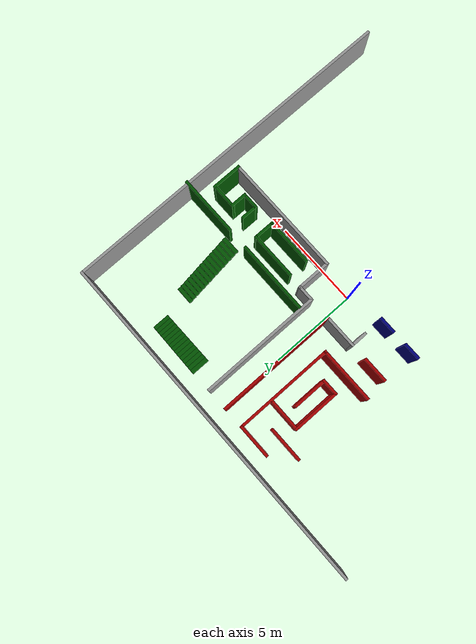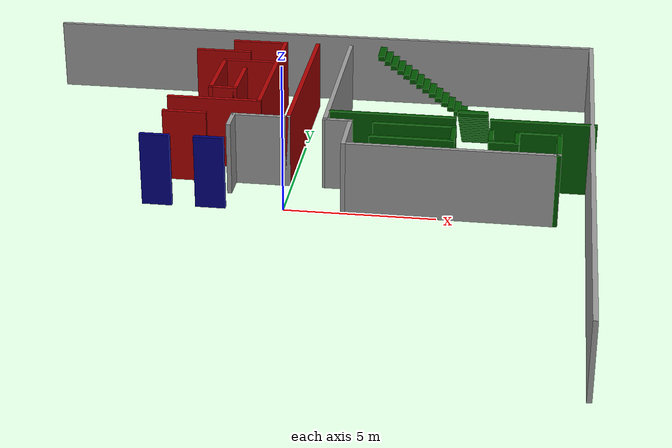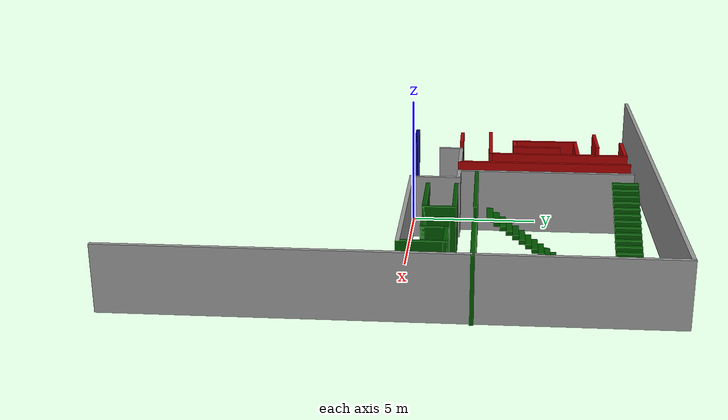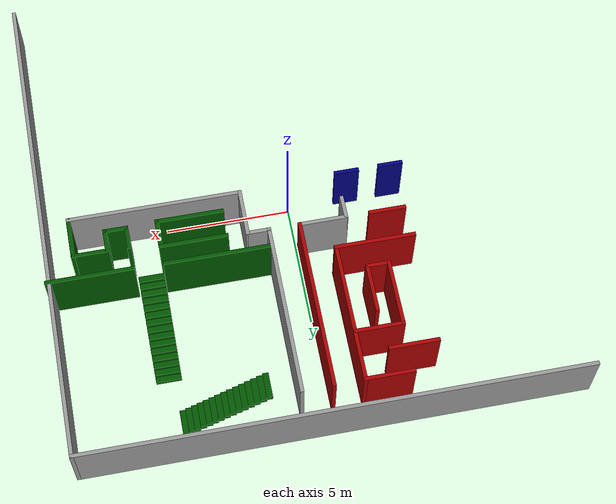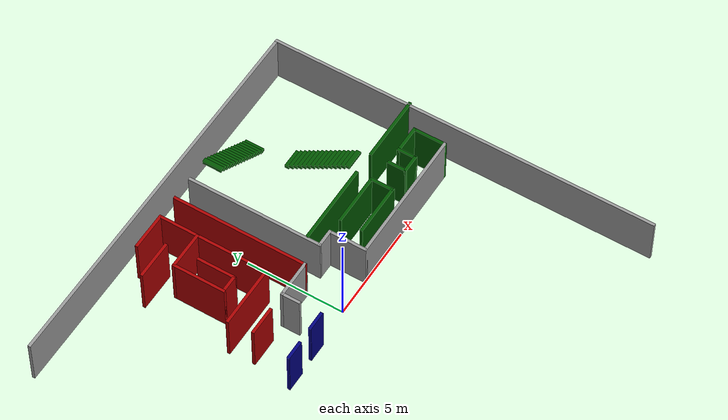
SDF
<sdf version="1.7">
 <model name="labyrinthe-backup">
  <pose>-0.042647 -0.217764 0 0 -0 0</pose>
  <link name="Stairs_0">
   <visual name="Stairs_0_Visual_0">
    <pose>5.96244 6.62392 0.083333 0 -0 0</pose>
    <geometry><box><size>1 0.233333 0.166667</size></box></geometry>
    <material>
     <script><uri>file://media/materials/scripts/gazebo.material</uri><name>Gazebo/Grey</name></script>
     <ambient>0 0.333333 0 1</ambient>
    </material>
    <meta><layer>0</layer></meta>
   </visual>
   <collision name="Stairs_0_Collision_0">
    <geometry><box><size>1 0.233333 0.166667</size></box></geometry>
    <pose>5.96244 6.62392 0.083333 0 -0 0</pose>
   </collision>
   <visual name="Stairs_0_Visual_1">
    <pose>5.96244 6.39059 0.25 0 -0 0</pose>
    <geometry><box><size>1 0.233333 0.166667</size></box></geometry>
    <material>
     <script><uri>file://media/materials/scripts/gazebo.material</uri><name>Gazebo/Grey</name></script>
     <ambient>0 0.333333 0 1</ambient>
    </material>
    <meta><layer>0</layer></meta>
   </visual>
   <collision name="Stairs_0_Collision_1">
    <geometry><box><size>1 0.233333 0.166667</size></box></geometry>
    <pose>5.96244 6.39059 0.25 0 -0 0</pose>
   </collision>
   <visual name="Stairs_0_Visual_2">
    <pose>5.96244 6.15725 0.416667 0 -0 0</pose>
    <geometry><box><size>1 0.233333 0.166667</size></box></geometry>
    <material>
     <script><uri>file://media/materials/scripts/gazebo.material</uri><name>Gazebo/Grey</name></script>
     <ambient>0 0.333333 0 1</ambient>
    </material>
    <meta><layer>0</layer></meta>
   </visual>
   <collision name="Stairs_0_Collision_2">
    <geometry><box><size>1 0.233333 0.166667</size></box></geometry>
    <pose>5.96244 6.15725 0.416667 0 -0 0</pose>
   </collision>
   <visual name="Stairs_0_Visual_3">
    <pose>5.96244 5.92392 0.583333 0 -0 0</pose>
    <geometry><box><size>1 0.233333 0.166667</size></box></geometry>
    <material>
     <script><uri>file://media/materials/scripts/gazebo.material</uri><name>Gazebo/Grey</name></script>
     <ambient>0 0.333333 0 1</ambient>
    </material>
    <meta><layer>0</layer></meta>
   </visual>
   <collision name="Stairs_0_Collision_3">
    <geometry><box><size>1 0.233333 0.166667</size></box></geometry>
    <pose>5.96244 5.92392 0.583333 0 -0 0</pose>
   </collision>
   <visual name="Stairs_0_Visual_4">
    <pose>5.96244 5.69059 0.75 0 -0 0</pose>
    <geometry><box><size>1 0.233333 0.166667</size></box></geometry>
    <material>
     <script><uri>file://media/materials/scripts/gazebo.material</uri><name>Gazebo/Grey</name></script>
     <ambient>0 0.333333 0 1</ambient>
    </material>
    <meta><layer>0</layer></meta>
   </visual>
   <collision name="Stairs_0_Collision_4">
    <geometry><box><size>1 0.233333 0.166667</size></box></geometry>
    <pose>5.96244 5.69059 0.75 0 -0 0</pose>
   </collision>
   <visual name="Stairs_0_Visual_5">
    <pose>5.96244 5.45725 0.916667 0 -0 0</pose>
    <geometry><box><size>1 0.233333 0.166667</size></box></geometry>
    <material>
     <script><uri>file://media/materials/scripts/gazebo.material</uri><name>Gazebo/Grey</name></script>
     <ambient>0 0.333333 0 1</ambient>
    </material>
    <meta><layer>0</layer></meta>
   </visual>
   <collision name="Stairs_0_Collision_5">
    <geometry><box><size>1 0.233333 0.166667</size></box></geometry>
    <pose>5.96244 5.45725 0.916667 0 -0 0</pose>
   </collision>
   <visual name="Stairs_0_Visual_6">
    <pose>5.96244 5.22392 1.08333 0 -0 0</pose>
    <geometry><box><size>1 0.233333 0.166667</size></box></geometry>
    <material>
     <script><uri>file://media/materials/scripts/gazebo.material</uri><name>Gazebo/Grey</name></script>
     <ambient>0 0.333333 0 1</ambient>
    </material>
    <meta><layer>0</layer></meta>
   </visual>
   <collision name="Stairs_0_Collision_6">
    <geometry><box><size>1 0.233333 0.166667</size></box></geometry>
    <pose>5.96244 5.22392 1.08333 0 -0 0</pose>
   </collision>
   <visual name="Stairs_0_Visual_7">
    <pose>5.96244 4.99059 1.25 0 -0 0</pose>
    <geometry><box><size>1 0.233333 0.166667</size></box></geometry>
    <material>
     <script><uri>file://media/materials/scripts/gazebo.material</uri><name>Gazebo/Grey</name></script>
     <ambient>0 0.333333 0 1</ambient>
    </material>
    <meta><layer>0</layer></meta>
   </visual>
   <collision name="Stairs_0_Collision_7">
    <geometry><box><size>1 0.233333 0.166667</size></box></geometry>
    <pose>5.96244 4.99059 1.25 0 -0 0</pose>
   </collision>
   <visual name="Stairs_0_Visual_8">
    <pose>5.96244 4.75725 1.41667 0 -0 0</pose>
    <geometry><box><size>1 0.233333 0.166667</size></box></geometry>
    <material>
     <script><uri>file://media/materials/scripts/gazebo.material</uri><name>Gazebo/Grey</name></script>
     <ambient>0 0.333333 0 1</ambient>
    </material>
    <meta><layer>0</layer></meta>
   </visual>
   <collision name="Stairs_0_Collision_8">
    <geometry><box><size>1 0.233333 0.166667</size></box></geometry>
    <pose>5.96244 4.75725 1.41667 0 -0 0</pose>
   </collision>
   <visual name="Stairs_0_Visual_9">
    <pose>5.96244 4.52392 1.58333 0 -0 0</pose>
    <geometry><box><size>1 0.233333 0.166667</size></box></geometry>
    <material>
     <script><uri>file://media/materials/scripts/gazebo.material</uri><name>Gazebo/Grey</name></script>
     <ambient>0 0.333333 0 1</ambient>
    </material>
    <meta><layer>0</layer></meta>
   </visual>
   <collision name="Stairs_0_Collision_9">
    <geometry><box><size>1 0.233333 0.166667</size></box></geometry>
    <pose>5.96244 4.52392 1.58333 0 -0 0</pose>
   </collision>
   <visual name="Stairs_0_Visual_10">
    <pose>5.96244 4.29059 1.75 0 -0 0</pose>
    <geometry><box><size>1 0.233333 0.166667</size></box></geometry>
    <material>
     <script><uri>file://media/materials/scripts/gazebo.material</uri><name>Gazebo/Grey</name></script>
     <ambient>0 0.333333 0 1</ambient>
    </material>
    <meta><layer>0</layer></meta>
   </visual>
   <collision name="Stairs_0_Collision_10">
    <geometry><box><size>1 0.233333 0.166667</size></box></geometry>
    <pose>5.96244 4.29059 1.75 0 -0 0</pose>
   </collision>
   <visual name="Stairs_0_Visual_11">
    <pose>5.96244 4.05725 1.91667 0 -0 0</pose>
    <geometry><box><size>1 0.233333 0.166667</size></box></geometry>
    <material>
     <script><uri>file://media/materials/scripts/gazebo.material</uri><name>Gazebo/Grey</name></script>
     <ambient>0 0.333333 0 1</ambient>
    </material>
    <meta><layer>0</layer></meta>
   </visual>
   <collision name="Stairs_0_Collision_11">
    <geometry><box><size>1 0.233333 0.166667</size></box></geometry>
    <pose>5.96244 4.05725 1.91667 0 -0 0</pose>
   </collision>
   <visual name="Stairs_0_Visual_12">
    <pose>5.96244 3.82392 2.08333 0 -0 0</pose>
    <geometry><box><size>1 0.233333 0.166667</size></box></geometry>
    <material>
     <script><uri>file://media/materials/scripts/gazebo.material</uri><name>Gazebo/Grey</name></script>
     <ambient>0 0.333333 0 1</ambient>
    </material>
    <meta><layer>0</layer></meta>
   </visual>
   <collision name="Stairs_0_Collision_12">
    <geometry><box><size>1 0.233333 0.166667</size></box></geometry>
    <pose>5.96244 3.82392 2.08333 0 -0 0</pose>
   </collision>
   <visual name="Stairs_0_Visual_13">
    <pose>5.96244 3.59059 2.25 0 -0 0</pose>
    <geometry><box><size>1 0.233333 0.166667</size></box></geometry>
    <material>
     <script><uri>file://media/materials/scripts/gazebo.material</uri><name>Gazebo/Grey</name></script>
     <ambient>0 0.333333 0 1</ambient>
    </material>
    <meta><layer>0</layer></meta>
   </visual>
   <collision name="Stairs_0_Collision_13">
    <geometry><box><size>1 0.233333 0.166667</size></box></geometry>
    <pose>5.96244 3.59059 2.25 0 -0 0</pose>
   </collision>
   <visual name="Stairs_0_Visual_14">
    <pose>5.96244 3.35725 2.41667 0 -0 0</pose>
    <geometry><box><size>1 0.233333 0.166667</size></box></geometry>
    <material>
     <script><uri>file://media/materials/scripts/gazebo.material</uri><name>Gazebo/Grey</name></script>
     <ambient>0 0.333333 0 1</ambient>
    </material>
    <meta><layer>0</layer></meta>
   </visual>
   <collision name="Stairs_0_Collision_14">
    <geometry><box><size>1 0.233333 0.166667</size></box></geometry>
    <pose>5.96244 3.35725 2.41667 0 -0 0</pose>
   </collision>
  </link>
  <link name="Stairs_1">
   <visual name="Stairs_1_Visual_0">
    <pose>5.63847 8.54811 0.083333 0 -0 -1.5708</pose>
    <geometry><box><size>1 0.233333 0.166667</size></box></geometry>
    <material>
     <script><uri>file://media/materials/scripts/gazebo.material</uri><name>Gazebo/Grey</name></script>
     <ambient>0 0.333333 0 1</ambient>
    </material>
    <meta><layer>0</layer></meta>
   </visual>
   <collision name="Stairs_1_Collision_0">
    <geometry><box><size>1 0.233333 0.166667</size></box></geometry>
    <pose>5.63847 8.54811 0.083333 0 -0 -1.5708</pose>
   </collision>
   <visual name="Stairs_1_Visual_1">
    <pose>5.40514 8.54811 0.25 0 -0 -1.5708</pose>
    <geometry><box><size>1 0.233333 0.166667</size></box></geometry>
    <material>
     <script><uri>file://media/materials/scripts/gazebo.material</uri><name>Gazebo/Grey</name></script>
     <ambient>0 0.333333 0 1</ambient>
    </material>
    <meta><layer>0</layer></meta>
   </visual>
   <collision name="Stairs_1_Collision_1">
    <geometry><box><size>1 0.233333 0.166667</size></box></geometry>
    <pose>5.40514 8.54811 0.25 0 -0 -1.5708</pose>
   </collision>
   <visual name="Stairs_1_Visual_2">
    <pose>5.1718 8.54811 0.416667 0 -0 -1.5708</pose>
    <geometry><box><size>1 0.233333 0.166667</size></box></geometry>
    <material>
     <script><uri>file://media/materials/scripts/gazebo.material</uri><name>Gazebo/Grey</name></script>
     <ambient>0 0.333333 0 1</ambient>
    </material>
    <meta><layer>0</layer></meta>
   </visual>
   <collision name="Stairs_1_Collision_2">
    <geometry><box><size>1 0.233333 0.166667</size></box></geometry>
    <pose>5.1718 8.54811 0.416667 0 -0 -1.5708</pose>
   </collision>
   <visual name="Stairs_1_Visual_3">
    <pose>4.93847 8.54811 0.583333 0 -0 -1.5708</pose>
    <geometry><box><size>1 0.233333 0.166667</size></box></geometry>
    <material>
     <script><uri>file://media/materials/scripts/gazebo.material</uri><name>Gazebo/Grey</name></script>
     <ambient>0 0.333333 0 1</ambient>
    </material>
    <meta><layer>0</layer></meta>
   </visual>
   <collision name="Stairs_1_Collision_3">
    <geometry><box><size>1 0.233333 0.166667</size></box></geometry>
    <pose>4.93847 8.54811 0.583333 0 -0 -1.5708</pose>
   </collision>
   <visual name="Stairs_1_Visual_4">
    <pose>4.70514 8.54811 0.75 0 -0 -1.5708</pose>
    <geometry><box><size>1 0.233333 0.166667</size></box></geometry>
    <material>
     <script><uri>file://media/materials/scripts/gazebo.material</uri><name>Gazebo/Grey</name></script>
     <ambient>0 0.333333 0 1</ambient>
    </material>
    <meta><layer>0</layer></meta>
   </visual>
   <collision name="Stairs_1_Collision_4">
    <geometry><box><size>1 0.233333 0.166667</size></box></geometry>
    <pose>4.70514 8.54811 0.75 0 -0 -1.5708</pose>
   </collision>
   <visual name="Stairs_1_Visual_5">
    <pose>4.4718 8.54811 0.916667 0 -0 -1.5708</pose>
    <geometry><box><size>1 0.233333 0.166667</size></box></geometry>
    <material>
     <script><uri>file://media/materials/scripts/gazebo.material</uri><name>Gazebo/Grey</name></script>
     <ambient>0 0.333333 0 1</ambient>
    </material>
    <meta><layer>0</layer></meta>
   </visual>
   <collision name="Stairs_1_Collision_5">
    <geometry><box><size>1 0.233333 0.166667</size></box></geometry>
    <pose>4.4718 8.54811 0.916667 0 -0 -1.5708</pose>
   </collision>
   <visual name="Stairs_1_Visual_6">
    <pose>4.23847 8.54811 1.08333 0 -0 -1.5708</pose>
    <geometry><box><size>1 0.233333 0.166667</size></box></geometry>
    <material>
     <script><uri>file://media/materials/scripts/gazebo.material</uri><name>Gazebo/Grey</name></script>
     <ambient>0 0.333333 0 1</ambient>
    </material>
    <meta><layer>0</layer></meta>
   </visual>
   <collision name="Stairs_1_Collision_6">
    <geometry><box><size>1 0.233333 0.166667</size></box></geometry>
    <pose>4.23847 8.54811 1.08333 0 -0 -1.5708</pose>
   </collision>
   <visual name="Stairs_1_Visual_7">
    <pose>4.00514 8.54811 1.25 0 -0 -1.5708</pose>
    <geometry><box><size>1 0.233333 0.166667</size></box></geometry>
    <material>
     <script><uri>file://media/materials/scripts/gazebo.material</uri><name>Gazebo/Grey</name></script>
     <ambient>0 0.333333 0 1</ambient>
    </material>
    <meta><layer>0</layer></meta>
   </visual>
   <collision name="Stairs_1_Collision_7">
    <geometry><box><size>1 0.233333 0.166667</size></box></geometry>
    <pose>4.00514 8.54811 1.25 0 -0 -1.5708</pose>
   </collision>
   <visual name="Stairs_1_Visual_8">
    <pose>3.77181 8.54811 1.41667 0 -0 -1.5708</pose>
    <geometry><box><size>1 0.233333 0.166667</size></box></geometry>
    <material>
     <script><uri>file://media/materials/scripts/gazebo.material</uri><name>Gazebo/Grey</name></script>
     <ambient>0 0.333333 0 1</ambient>
    </material>
    <meta><layer>0</layer></meta>
   </visual>
   <collision name="Stairs_1_Collision_8">
    <geometry><box><size>1 0.233333 0.166667</size></box></geometry>
    <pose>3.77181 8.54811 1.41667 0 -0 -1.5708</pose>
   </collision>
   <visual name="Stairs_1_Visual_9">
    <pose>3.53847 8.54811 1.58333 0 -0 -1.5708</pose>
    <geometry><box><size>1 0.233333 0.166667</size></box></geometry>
    <material>
     <script><uri>file://media/materials/scripts/gazebo.material</uri><name>Gazebo/Grey</name></script>
     <ambient>0 0.333333 0 1</ambient>
    </material>
    <meta><layer>0</layer></meta>
   </visual>
   <collision name="Stairs_1_Collision_9">
    <geometry><box><size>1 0.233333 0.166667</size></box></geometry>
    <pose>3.53847 8.54811 1.58333 0 -0 -1.5708</pose>
   </collision>
   <visual name="Stairs_1_Visual_10">
    <pose>3.30514 8.54811 1.75 0 -0 -1.5708</pose>
    <geometry><box><size>1 0.233333 0.166667</size></box></geometry>
    <material>
     <script><uri>file://media/materials/scripts/gazebo.material</uri><name>Gazebo/Grey</name></script>
     <ambient>0 0.333333 0 1</ambient>
    </material>
    <meta><layer>0</layer></meta>
   </visual>
   <collision name="Stairs_1_Collision_10">
    <geometry><box><size>1 0.233333 0.166667</size></box></geometry>
    <pose>3.30514 8.54811 1.75 0 -0 -1.5708</pose>
   </collision>
   <visual name="Stairs_1_Visual_11">
    <pose>3.0718 8.54811 1.91667 0 -0 -1.5708</pose>
    <geometry><box><size>1 0.233333 0.166667</size></box></geometry>
    <material>
     <script><uri>file://media/materials/scripts/gazebo.material</uri><name>Gazebo/Grey</name></script>
     <ambient>0 0.333333 0 1</ambient>
    </material>
    <meta><layer>0</layer></meta>
   </visual>
   <collision name="Stairs_1_Collision_11">
    <geometry><box><size>1 0.233333 0.166667</size></box></geometry>
    <pose>3.0718 8.54811 1.91667 0 -0 -1.5708</pose>
   </collision>
   <visual name="Stairs_1_Visual_12">
    <pose>2.83847 8.54811 2.08333 0 -0 -1.5708</pose>
    <geometry><box><size>1 0.233333 0.166667</size></box></geometry>
    <material>
     <script><uri>file://media/materials/scripts/gazebo.material</uri><name>Gazebo/Grey</name></script>
     <ambient>0 0.333333 0 1</ambient>
    </material>
    <meta><layer>0</layer></meta>
   </visual>
   <collision name="Stairs_1_Collision_12">
    <geometry><box><size>1 0.233333 0.166667</size></box></geometry>
    <pose>2.83847 8.54811 2.08333 0 -0 -1.5708</pose>
   </collision>
   <visual name="Stairs_1_Visual_13">
    <pose>2.60514 8.54811 2.25 0 -0 -1.5708</pose>
    <geometry><box><size>1 0.233333 0.166667</size></box></geometry>
    <material>
     <script><uri>file://media/materials/scripts/gazebo.material</uri><name>Gazebo/Grey</name></script>
     <ambient>0 0.333333 0 1</ambient>
    </material>
    <meta><layer>0</layer></meta>
   </visual>
   <collision name="Stairs_1_Collision_13">
    <geometry><box><size>1 0.233333 0.166667</size></box></geometry>
    <pose>2.60514 8.54811 2.25 0 -0 -1.5708</pose>
   </collision>
   <visual name="Stairs_1_Visual_14">
    <pose>2.3718 8.54811 2.41667 0 -0 -1.5708</pose>
    <geometry><box><size>1 0.233333 0.166667</size></box></geometry>
    <material>
     <script><uri>file://media/materials/scripts/gazebo.material</uri><name>Gazebo/Grey</name></script>
     <ambient>0 0.333333 0 1</ambient>
    </material>
    <meta><layer>0</layer></meta>
   </visual>
   <collision name="Stairs_1_Collision_14">
    <geometry><box><size>1 0.233333 0.166667</size></box></geometry>
    <pose>2.3718 8.54811 2.41667 0 -0 -1.5708</pose>
   </collision>
  </link>
  <link name="Wall_123">
   <collision name="Wall_123_Collision">
    <geometry><box><size>1 0.15 2.5</size></box></geometry>
    <pose>0 0 1.25 0 -0 0</pose>
   </collision>
   <visual name="Wall_123_Visual">
    <pose>0 0 1.25 0 -0 0</pose>
    <geometry><box><size>1 0.15 2.5</size></box></geometry>
    <material>
     <script><uri>file://media/materials/scripts/gazebo.material</uri><name>Gazebo/Grey</name></script>
     <ambient>0 0 0.498039 1</ambient>
    </material>
    <meta><layer>0</layer></meta>
   </visual>
   <pose>-2.35877 0.113732 0 0 -0 3.14159</pose>
  </link>
  <link name="Wall_126">
   <collision name="Wall_126_Collision">
    <geometry><box><size>1 0.15 2.5</size></box></geometry>
    <pose>0 0 1.25 0 -0 0</pose>
   </collision>
   <visual name="Wall_126_Visual">
    <pose>0 0 1.25 0 -0 0</pose>
    <geometry><box><size>1 0.15 2.5</size></box></geometry>
    <material>
     <script><uri>file://media/materials/scripts/gazebo.material</uri><name>Gazebo/Grey</name></script>
     <ambient>0 0 0.498039 1</ambient>
    </material>
    <meta><layer>0</layer></meta>
   </visual>
   <pose>-4.14326 0.097337 0 0 -0 3.14159</pose>
  </link>
  <link name="Wall_20">
   <collision name="Wall_20_Collision">
    <geometry><box><size>20 0.15 2.5</size></box></geometry>
    <pose>0 0 1.25 0 -0 0</pose>
   </collision>
   <visual name="Wall_20_Visual">
    <pose>0 0 1.25 0 -0 0</pose>
    <geometry><box><size>20 0.15 2.5</size></box></geometry>
    <material>
     <script><uri>file://media/materials/scripts/gazebo.material</uri><name>Gazebo/Grey</name></script>
     <ambient>0 0 0 1</ambient>
    </material>
    <meta><layer>0</layer></meta>
   </visual>
   <pose>-0.030043 9.94053 0 0 -0 0</pose>
  </link>
  <link name="Wall_21">
   <collision name="Wall_21_Collision">
    <geometry><box><size>20 0.15 2.5</size></box></geometry>
    <pose>0 0 1.25 0 -0 0</pose>
   </collision>
   <visual name="Wall_21_Visual">
    <pose>0 0 1.25 0 -0 0</pose>
    <geometry><box><size>20 0.15 2.5</size></box></geometry>
    <material>
     <script><uri>file://media/materials/scripts/gazebo.material</uri><name>Gazebo/Grey</name></script>
     <ambient>0 0 0 1</ambient>
    </material>
    <meta><layer>0</layer></meta>
   </visual>
   <pose>9.89496 0.015532 0 0 -0 -1.5708</pose>
  </link>
  <link name="Wall_260">
   <collision name="Wall_260_Collision">
    <geometry><box><size>7 0.15 2.5</size></box></geometry>
    <pose>0 0 1.25 0 -0 0</pose>
   </collision>
   <visual name="Wall_260_Visual">
    <pose>0 0 1.25 0 -0 0</pose>
    <geometry><box><size>7 0.15 2.5</size></box></geometry>
    <material>
     <script><uri>file://media/materials/scripts/gazebo.material</uri><name>Gazebo/Grey</name></script>
     <ambient>0 0 0 1</ambient>
    </material>
    <meta><layer>0</layer></meta>
   </visual>
   <pose>5.42013 0.26331 0 0 -0 0</pose>
  </link>
  <link name="Wall_261">
   <collision name="Wall_261_Collision">
    <geometry><box><size>1.75 0.15 2.5</size></box></geometry>
    <pose>0 0 1.25 0 -0 0</pose>
   </collision>
   <visual name="Wall_261_Visual">
    <pose>0 0 1.25 0 -0 0</pose>
    <geometry><box><size>1.75 0.15 2.5</size></box></geometry>
    <material>
     <script><uri>file://media/materials/scripts/gazebo.material</uri><name>Gazebo/Grey</name></script>
     <ambient>0 0.333333 0 1</ambient>
    </material>
    <meta><layer>0</layer></meta>
   </visual>
   <pose>8.84513 1.06331 0 0 -0 1.5708</pose>
  </link>
  <link name="Wall_262">
   <collision name="Wall_262_Collision">
    <geometry><box><size>1.5 0.15 2.5</size></box></geometry>
    <pose>0 0 1.25 0 -0 0</pose>
   </collision>
   <visual name="Wall_262_Visual">
    <pose>0 0 1.25 0 -0 0</pose>
    <geometry><box><size>1.5 0.15 2.5</size></box></geometry>
    <material>
     <script><uri>file://media/materials/scripts/gazebo.material</uri><name>Gazebo/Grey</name></script>
     <ambient>0 0.333333 0 1</ambient>
    </material>
    <meta><layer>0</layer></meta>
   </visual>
   <pose>8.17013 1.86331 0 0 -0 3.14159</pose>
  </link>
  <link name="Wall_263">
   <collision name="Wall_263_Collision">
    <geometry><box><size>1 0.15 2.5</size></box></geometry>
    <pose>0 0 1.25 0 -0 0</pose>
   </collision>
   <visual name="Wall_263_Visual">
    <pose>0 0 1.25 0 -0 0</pose>
    <geometry><box><size>1 0.15 2.5</size></box></geometry>
    <material>
     <script><uri>file://media/materials/scripts/gazebo.material</uri><name>Gazebo/Grey</name></script>
     <ambient>0 0.333333 0 1</ambient>
    </material>
    <meta><layer>0</layer></meta>
   </visual>
   <pose>7.49513 1.43831 0 0 -0 -1.5708</pose>
  </link>
  <link name="Wall_264">
   <collision name="Wall_264_Collision">
    <geometry><box><size>1 0.15 2.5</size></box></geometry>
    <pose>0 0 1.25 0 -0 0</pose>
   </collision>
   <visual name="Wall_264_Visual">
    <pose>0 0 1.25 0 -0 0</pose>
    <geometry><box><size>1 0.15 2.5</size></box></geometry>
    <material>
     <script><uri>file://media/materials/scripts/gazebo.material</uri><name>Gazebo/Grey</name></script>
     <ambient>0 0.333333 0 1</ambient>
    </material>
    <meta><layer>0</layer></meta>
   </visual>
   <pose>7.07013 1.01331 0 0 -0 3.14159</pose>
  </link>
  <link name="Wall_265">
   <collision name="Wall_265_Collision">
    <geometry><box><size>1 0.15 2.5</size></box></geometry>
    <pose>0 0 1.25 0 -0 0</pose>
   </collision>
   <visual name="Wall_265_Visual">
    <pose>0 0 1.25 0 -0 0</pose>
    <geometry><box><size>1 0.15 2.5</size></box></geometry>
    <material>
     <script><uri>file://media/materials/scripts/gazebo.material</uri><name>Gazebo/Grey</name></script>
     <ambient>0 0.333333 0 1</ambient>
    </material>
    <meta><layer>0</layer></meta>
   </visual>
   <pose>6.64513 1.43831 0 0 -0 1.5708</pose>
  </link>
  <link name="Wall_267">
   <collision name="Wall_267_Collision">
    <geometry><box><size>3.5 0.15 2.5</size></box></geometry>
    <pose>0 0 1.25 0 -0 0</pose>
   </collision>
   <visual name="Wall_267_Visual">
    <pose>0 0 1.25 0 -0 0</pose>
    <geometry><box><size>3.5 0.15 2.5</size></box></geometry>
    <material>
     <script><uri>file://media/materials/scripts/gazebo.material</uri><name>Gazebo/Grey</name></script>
     <ambient>0 0.333333 0 1</ambient>
    </material>
    <meta><layer>0</layer></meta>
   </visual>
   <pose>8.31191 2.80846 0 0 -0 0</pose>
  </link>
  <link name="Wall_269">
   <collision name="Wall_269_Collision">
    <geometry><box><size>4.25 0.15 2.5</size></box></geometry>
    <pose>0 0 1.25 0 -0 0</pose>
   </collision>
   <visual name="Wall_269_Visual">
    <pose>0 0 1.25 0 -0 0</pose>
    <geometry><box><size>4.25 0.15 2.5</size></box></geometry>
    <material>
     <script><uri>file://media/materials/scripts/gazebo.material</uri><name>Gazebo/Grey</name></script>
     <ambient>0 0.333333 0 1</ambient>
    </material>
    <meta><layer>0</layer></meta>
   </visual>
   <pose>3.31731 2.82169 0 0 -0 3.14159</pose>
  </link>
  <link name="Wall_271">
   <collision name="Wall_271_Collision">
    <geometry><box><size>2.75 0.15 2.5</size></box></geometry>
    <pose>0 0 1.25 0 -0 0</pose>
   </collision>
   <visual name="Wall_271_Visual">
    <pose>0 0 1.25 0 -0 0</pose>
    <geometry><box><size>2.75 0.15 2.5</size></box></geometry>
    <material>
     <script><uri>file://media/materials/scripts/gazebo.material</uri><name>Gazebo/Grey</name></script>
     <ambient>0 0.333333 0 1</ambient>
    </material>
    <meta><layer>0</layer></meta>
   </visual>
   <pose>4.12811 2.05464 0 0 -0 0</pose>
  </link>
  <link name="Wall_272">
   <collision name="Wall_272_Collision">
    <geometry><box><size>1.25 0.15 2.5</size></box></geometry>
    <pose>0 0 1.25 0 -0 0</pose>
   </collision>
   <visual name="Wall_272_Visual">
    <pose>0 0 1.25 0 -0 0</pose>
    <geometry><box><size>1.25 0.15 2.5</size></box></geometry>
    <material>
     <script><uri>file://media/materials/scripts/gazebo.material</uri><name>Gazebo/Grey</name></script>
     <ambient>0 0.333333 0 1</ambient>
    </material>
    <meta><layer>0</layer></meta>
   </visual>
   <pose>5.42811 1.50464 0 0 -0 -1.5708</pose>
  </link>
  <link name="Wall_273">
   <collision name="Wall_273_Collision">
    <geometry><box><size>2.75 0.15 2.5</size></box></geometry>
    <pose>0 0 1.25 0 -0 0</pose>
   </collision>
   <visual name="Wall_273_Visual">
    <pose>0 0 1.25 0 -0 0</pose>
    <geometry><box><size>2.75 0.15 2.5</size></box></geometry>
    <material>
     <script><uri>file://media/materials/scripts/gazebo.material</uri><name>Gazebo/Grey</name></script>
     <ambient>0 0.333333 0 1</ambient>
    </material>
    <meta><layer>0</layer></meta>
   </visual>
   <pose>4.12811 0.954637 0 0 -0 3.14159</pose>
  </link>
  <link name="Wall_34">
   <collision name="Wall_34_Collision">
    <geometry><box><size>2 0.15 2.5</size></box></geometry>
    <pose>0 0 1.25 0 -0 0</pose>
   </collision>
   <visual name="Wall_34_Visual">
    <pose>0 0 1.25 0 -0 0</pose>
    <geometry><box><size>2 0.15 2.5</size></box></geometry>
    <material>
     <script><uri>file://media/materials/scripts/gazebo.material</uri><name>Gazebo/Grey</name></script>
     <ambient>0 0 0 1</ambient>
    </material>
    <meta><layer>0</layer></meta>
   </visual>
   <pose>-1.00876 2.11373 0 0 -0 0</pose>
  </link>
  <link name="Wall_36">
   <collision name="Wall_36_Collision">
    <geometry><box><size>1 0.15 2.5</size></box></geometry>
    <pose>0 0 1.25 0 -0 0</pose>
   </collision>
   <visual name="Wall_36_Visual">
    <pose>0 0 1.25 0 -0 0</pose>
    <geometry><box><size>1 0.15 2.5</size></box></geometry>
    <material>
     <script><uri>file://media/materials/scripts/gazebo.material</uri><name>Gazebo/Grey</name></script>
     <ambient>0 0 0 1</ambient>
    </material>
    <meta><layer>0</layer></meta>
   </visual>
   <pose>-1.93376 1.68873 0 0 -0 -1.5708</pose>
  </link>
  <link name="Wall_51">
   <collision name="Wall_51_Collision">
    <geometry><box><size>1 0.15 2.5</size></box></geometry>
    <pose>0 0 1.25 0 -0 0</pose>
   </collision>
   <visual name="Wall_51_Visual">
    <pose>0 0 1.25 0 -0 0</pose>
    <geometry><box><size>1 0.15 2.5</size></box></geometry>
    <material>
     <script><uri>file://media/materials/scripts/gazebo.material</uri><name>Gazebo/Grey</name></script>
     <ambient>0 0 0 1</ambient>
    </material>
    <meta><layer>0</layer></meta>
   </visual>
   <pose>1.56989 2.11354 0 0 -0 3.14106</pose>
  </link>
  <link name="Wall_53">
   <collision name="Wall_53_Collision">
    <geometry><box><size>2 0.15 2.5</size></box></geometry>
    <pose>0 0 1.25 0 -0 0</pose>
   </collision>
   <visual name="Wall_53_Visual">
    <pose>0 0 1.25 0 -0 0</pose>
    <geometry><box><size>2 0.15 2.5</size></box></geometry>
    <material>
     <script><uri>file://media/materials/scripts/gazebo.material</uri><name>Gazebo/Grey</name></script>
     <ambient>0 0 0 1</ambient>
    </material>
    <meta><layer>0</layer></meta>
   </visual>
   <pose>1.99513 1.18831 0 0 -0 -1.5708</pose>
  </link>
  <link name="Wall_63">
   <collision name="Wall_63_Collision">
    <geometry><box><size>7 0.15 2.5</size></box></geometry>
    <pose>0 0 1.25 0 -0 0</pose>
   </collision>
   <visual name="Wall_63_Visual">
    <pose>0 0 1.25 0 -0 0</pose>
    <geometry><box><size>7 0.15 2.5</size></box></geometry>
    <material>
     <script><uri>file://media/materials/scripts/gazebo.material</uri><name>Gazebo/Grey</name></script>
     <ambient>0 0 0 1</ambient>
    </material>
    <meta><layer>0</layer></meta>
   </visual>
   <pose>1.14465 5.53876 0 0 -0 1.5708</pose>
  </link>
  <link name="Wall_66">
   <collision name="Wall_66_Collision">
    <geometry><box><size>7 0.15 2.5</size></box></geometry>
    <pose>0 0 1.25 0 -0 0</pose>
   </collision>
   <visual name="Wall_66_Visual">
    <pose>0 0 1.25 0 -0 0</pose>
    <geometry><box><size>7 0.15 2.5</size></box></geometry>
    <material>
     <script><uri>file://media/materials/scripts/gazebo.material</uri><name>Gazebo/Grey</name></script>
     <ambient>0.666667 0 0 1</ambient>
    </material>
    <meta><layer>0</layer></meta>
   </visual>
   <pose>-0.083765 5.53873 0 0 -0 1.5708</pose>
  </link>
  <link name="Wall_68">
   <collision name="Wall_68_Collision">
    <geometry><box><size>5.75 0.15 2.5</size></box></geometry>
    <pose>0 0 1.25 0 -0 0</pose>
   </collision>
   <visual name="Wall_68_Visual">
    <pose>0 0 1.25 0 -0 0</pose>
    <geometry><box><size>5.75 0.15 2.5</size></box></geometry>
    <material>
     <script><uri>file://media/materials/scripts/gazebo.material</uri><name>Gazebo/Grey</name></script>
     <ambient>0.666667 0 0 1</ambient>
    </material>
    <meta><layer>0</layer></meta>
   </visual>
   <pose>-1.28486 6.15809 0 0 -0 -1.5708</pose>
  </link>
  <link name="Wall_69">
   <collision name="Wall_69_Collision">
    <geometry><box><size>3.25 0.15 2.5</size></box></geometry>
    <pose>0 0 1.25 0 -0 0</pose>
   </collision>
   <visual name="Wall_69_Visual">
    <pose>0 0 1.25 0 -0 0</pose>
    <geometry><box><size>3.25 0.15 2.5</size></box></geometry>
    <material>
     <script><uri>file://media/materials/scripts/gazebo.material</uri><name>Gazebo/Grey</name></script>
     <ambient>0.666667 0 0 1</ambient>
    </material>
    <meta><layer>0</layer></meta>
   </visual>
   <pose>-2.83486 3.35809 0 0 -0 3.14159</pose>
  </link>
  <link name="Wall_71">
   <collision name="Wall_71_Collision">
    <geometry><box><size>2 0.15 2.5</size></box></geometry>
    <pose>0 0 1.25 0 -0 0</pose>
   </collision>
   <visual name="Wall_71_Visual">
    <pose>0 0 1.25 0 -0 0</pose>
    <geometry><box><size>2 0.15 2.5</size></box></geometry>
    <material>
     <script><uri>file://media/materials/scripts/gazebo.material</uri><name>Gazebo/Grey</name></script>
     <ambient>0.666667 0 0 1</ambient>
    </material>
    <meta><layer>0</layer></meta>
   </visual>
   <pose>-2.20986 8.95809 0 0 -0 3.14159</pose>
  </link>
  <link name="Wall_76">
   <collision name="Wall_76_Collision">
    <geometry><box><size>2 0.15 2.5</size></box></geometry>
    <pose>0 0 1.25 0 -0 0</pose>
   </collision>
   <visual name="Wall_76_Visual">
    <pose>0 0 1.25 0 -0 0</pose>
    <geometry><box><size>2 0.15 2.5</size></box></geometry>
    <material>
     <script><uri>file://media/materials/scripts/gazebo.material</uri><name>Gazebo/Grey</name></script>
     <ambient>0.666667 0 0 1</ambient>
    </material>
    <meta><layer>0</layer></meta>
   </visual>
   <pose>-3.38839 7.90009 0 0 -0 0</pose>
  </link>
  <link name="Wall_81">
   <collision name="Wall_81_Collision">
    <geometry><box><size>2 0.15 2.5</size></box></geometry>
    <pose>0 0 1.25 0 -0 0</pose>
   </collision>
   <visual name="Wall_81_Visual">
    <pose>0 0 1.25 0 -0 0</pose>
    <geometry><box><size>2 0.15 2.5</size></box></geometry>
    <material>
     <script><uri>file://media/materials/scripts/gazebo.material</uri><name>Gazebo/Grey</name></script>
     <ambient>0.666667 0 0 1</ambient>
    </material>
    <meta><layer>0</layer></meta>
   </visual>
   <pose>-2.23631 6.98756 0 0 -0 3.14159</pose>
  </link>
  <link name="Wall_82">
   <collision name="Wall_82_Collision">
    <geometry><box><size>2.75 0.15 2.5</size></box></geometry>
    <pose>0 0 1.25 0 -0 0</pose>
   </collision>
   <visual name="Wall_82_Visual">
    <pose>0 0 1.25 0 -0 0</pose>
    <geometry><box><size>2.75 0.15 2.5</size></box></geometry>
    <material>
     <script><uri>file://media/materials/scripts/gazebo.material</uri><name>Gazebo/Grey</name></script>
     <ambient>0.666667 0 0 1</ambient>
    </material>
    <meta><layer>0</layer></meta>
   </visual>
   <pose>-3.16131 5.68756 0 0 -0 -1.5708</pose>
  </link>
  <link name="Wall_83">
   <collision name="Wall_83_Collision">
    <geometry><box><size>1 0.15 2.5</size></box></geometry>
    <pose>0 0 1.25 0 -0 0</pose>
   </collision>
   <visual name="Wall_83_Visual">
    <pose>0 0 1.25 0 -0 0</pose>
    <geometry><box><size>1 0.15 2.5</size></box></geometry>
    <material>
     <script><uri>file://media/materials/scripts/gazebo.material</uri><name>Gazebo/Grey</name></script>
     <ambient>0.666667 0 0 1</ambient>
    </material>
    <meta><layer>0</layer></meta>
   </visual>
   <pose>-2.73631 4.38756 0 0 -0 0</pose>
  </link>
  <link name="Wall_84">
   <collision name="Wall_84_Collision">
    <geometry><box><size>2 0.15 2.5</size></box></geometry>
    <pose>0 0 1.25 0 -0 0</pose>
   </collision>
   <visual name="Wall_84_Visual">
    <pose>0 0 1.25 0 -0 0</pose>
    <geometry><box><size>2 0.15 2.5</size></box></geometry>
    <material>
     <script><uri>file://media/materials/scripts/gazebo.material</uri><name>Gazebo/Grey</name></script>
     <ambient>0.666667 0 0 1</ambient>
    </material>
    <meta><layer>0</layer></meta>
   </visual>
   <pose>-2.31131 5.31256 0 0 -0 1.5708</pose>
  </link>
  <link name="Wall_99">
   <collision name="Wall_99_Collision">
    <geometry><box><size>1.5 0.15 2.5</size></box></geometry>
    <pose>0 0 1.25 0 -0 0</pose>
   </collision>
   <visual name="Wall_99_Visual">
    <pose>0 0 1.25 0 -0 0</pose>
    <geometry><box><size>1.5 0.15 2.5</size></box></geometry>
    <material>
     <script><uri>file://media/materials/scripts/gazebo.material</uri><name>Gazebo/Grey</name></script>
     <ambient>0.666667 0 0 1</ambient>
    </material>
    <meta><layer>0</layer></meta>
   </visual>
   <pose>-3.59976 2.10754 0 0 -0 3.14159</pose>
  </link>
  <static>1</static>
 </model>
</sdf>
